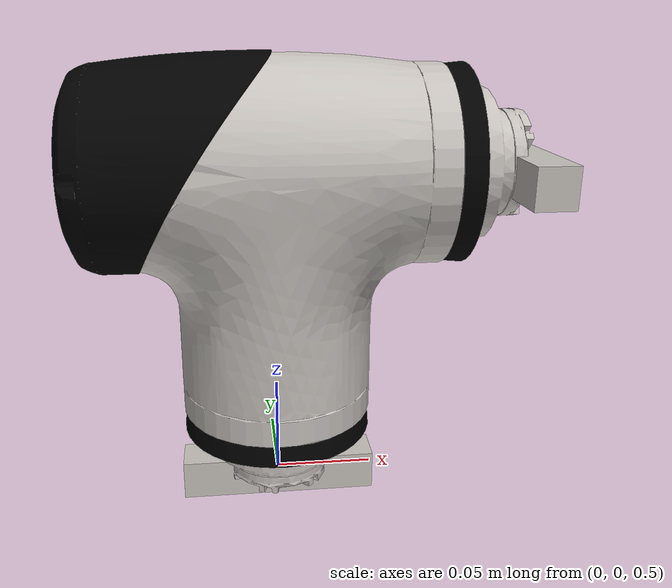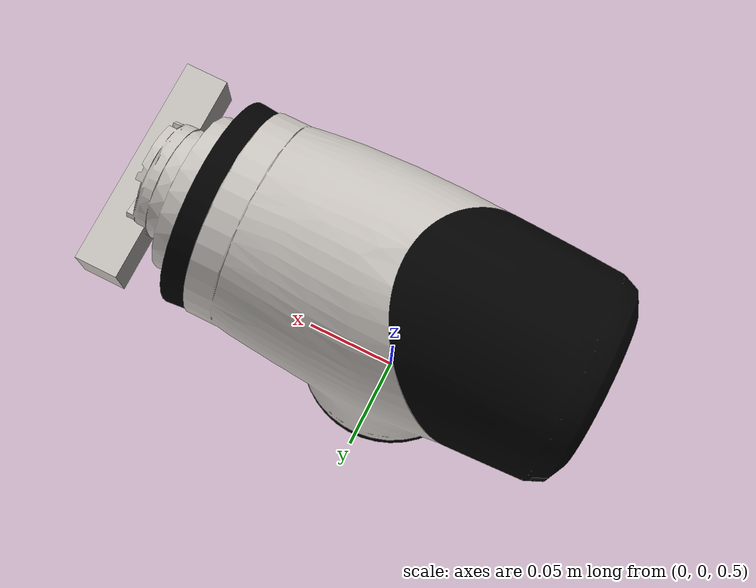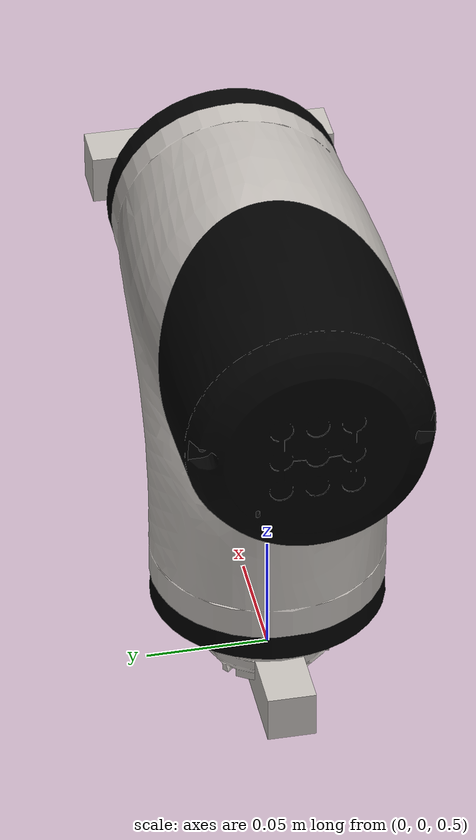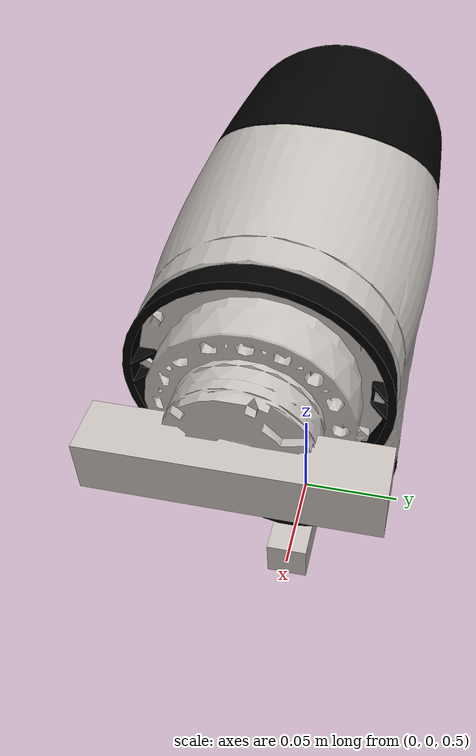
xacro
<robot name="module17" xmlns:xacro="http://www.ros.org/wiki/xacro">

  <xacro:include filename="$(find mara_description)/urdf/materials.xacro" />

  <xacro:property name="PI" value="3.1415926535897931"/>

  <xacro:property name="density" value="3.09"/>

  <link name="world"/>

  <joint name="elfin_module_base_joint" type="fixed">
    <origin xyz="0 0 0.5" rpy="0 0 0" />
    <parent link="world" />
    <child link="elfin_module_14" />
  </joint>

  <link name="elfin_module_14">
    <inertial>
      <origin xyz="-0.0158710385319 -0.0365214098995 4.94388107361e-07" rpy="0 0 0"/>
      <mass value="${0.807027243448*density}"/>
      <inertia
      ixx="${0.00193719*density}" ixy="${0.00047145*density}" ixz="${2e-08*density}"
      iyy="${0.00112857*density}" iyz="${-1.1e-07*density}"
      izz="${0.00245655*density}"/>
    </inertial>
    <visual>
      <origin xyz="0 0 0" rpy="0 0 0" />
      <geometry>
        <mesh filename="model://mara_description/meshes/MARA_T49.dae" scale="0.001 0.001 0.001"/>
      </geometry>
      <material name="metal"/>
    </visual>
    <collision>
      <origin xyz="0 0 0" rpy="0 0 0" />
      <geometry>
        <mesh filename="model://mara_description/meshes/MARA_T49.dae" scale="0.001 0.001 0.001"/>
      </geometry>
    </collision>
  </link>

  <link name="motor_cover">
    <inertial>
      <origin rpy="0 0 0" xyz="8.625E-08 -4.6583E-06 0.03145"/>
      <mass value="0.2"/>
      <inertia ixx="0.04517" ixy="0.00002" ixz="0.0" iyy="0.01587" iyz="0.01444" izz="0.03303"/>
    </inertial>
    <visual>
      <origin rpy="0 0 0" xyz="0 0 0"/>
      <geometry>
        <mesh filename="model://mara_description/meshes/MARA_T49_Black.dae" scale="0.001 0.001 0.001"/>
      </geometry>
      <material name="Gazebo/Black">
        <color rgba="0. 0. 0. 1"/>
      </material>
    </visual>
    <collision>
      <origin rpy="0 0 0" xyz="0 0 0"/>
      <geometry>
        <mesh filename="model://mara_description/meshes/MARA_T49_Black.dae" scale="0.001 0.001 0.001"/>
      </geometry>
    </collision>
  </link>
  <gazebo reference="motor_cover">
    <material>Gazebo/Black</material>
    <selfCollide>True</selfCollide>
  </gazebo>

  <link name="dummy_link1">
    <inertial>
      <origin xyz="0 0 0" rpy="0 0 0"/>
      <mass value="0.01"/>
      <inertia ixx="0.0001" ixy="0" ixz="0" iyy="0.0001" iyz="0" izz="0.0001"/>
    </inertial>

    <visual>
      <origin xyz="0 0 0" rpy="0 0 0"/>
      <geometry>
	       <box size="0.02 0.1 0.02"/>
      </geometry>
      <material name="metal"/>
    </visual>

    <collision>
      <origin xyz="0 0 0" rpy="0 0 0"/>
      <geometry>
	    <box size="0.02 0.1 0.02"/>
      </geometry>
    </collision>
  </link>

  <joint name="motor1" type="revolute">
    <origin xyz="0.12 0 0.16074" rpy="0 ${-PI/2} 0" />
    <parent link="elfin_module_14" />
    <child link="dummy_link1" />
    <axis xyz="0 0 1" />
    <limit lower="-3.14" upper="3.14" effort="34" velocity="1.57" />
  </joint>

  <link name="dummy_link2">
    <inertial>
      <origin xyz="0 0 0" rpy="0 0 0"/>
      <mass value="0.01"/>
      <inertia ixx="0.0001" ixy="0" ixz="0" iyy="0.0001" iyz="0" izz="0.0001"/>
    </inertial>

    <visual>
      <origin xyz="0 0 0" rpy="0 0 0"/>
      <geometry>
	       <box size="0.1 0.02 0.02"/>
      </geometry>
      <material name="metal"/>
    </visual>

    <collision>
      <origin xyz="0 0 0" rpy="0 0 0"/>
      <geometry>
	    <box size="0.1 0.02 0.02"/>
      </geometry>
    </collision>
  </link>

  <joint name="motor2" type="revolute">
    <origin xyz="0 0 0" rpy="${PI/2} 0 0" />
    <parent link="elfin_module_14" />
    <child link="dummy_link2" />
    <axis xyz="0 1 0" />
    <limit lower="-3.14" upper="3.14" effort="34" velocity="1.57" />
  </joint>

  <joint name="motor_cover_joint" type="fixed">
    <origin rpy="0 0 0" xyz="0 0 0.0"/>
    <parent link="elfin_module_14"/>
    <child link="motor_cover"/>
  </joint>

  <gazebo>
    <plugin name="hrim_actuation_servomotor_000000000001" filename="libmara_gazebo_joint_plugin.so">
      <ros></ros>
      <axis1>motor2</axis1>
      <axis2>motor1</axis2>
      <type>series14</type>
    </plugin>
  </gazebo>
</robot>

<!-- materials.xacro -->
<robot xmlns:xacro="http://www.ros.org/wiki/xacro">

  <material name="black">
    <color rgba="0.0 0.0 0.0 1.0"/>
  </material>

  <material name="blue">
    <color rgba="0.0 0.0 0.8 1.0"/>
  </material>

  <material name="green">
    <color rgba="0.0 0.8 0.0 1.0"/>
  </material>

  <material name="grey">
    <color rgba="0.2 0.2 0.2 1.0"/>
  </material>

  <material name="orange">
    <color rgba="${255/255} ${108/255} ${10/255} 1.0"/>
  </material>

  <material name="brown">
    <color rgba="${222/255} ${207/255} ${195/255} 1.0"/>
  </material>

  <material name="red">
    <color rgba="0.8 0.0 0.0 1.0"/>
  </material>

  <material name="white">
    <color rgba="1.0 1.0 1.0 1.0"/>
  </material>

  <material name="metal">
    <color rgba="0.768627450980392 0.749019607843137 0.729411764705882 1" />
  </material>

  <material name="metal_grey">
    <color rgba="0.501960784313725 0.501960784313725 0.501960784313725 1" />
  </material>

  <material name="metal_white">
    <color rgba="0.866666666666667 0.866666666666667 0.890196078431373 1" />
  </material>

</robot>
